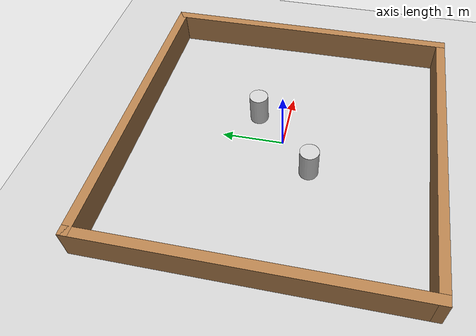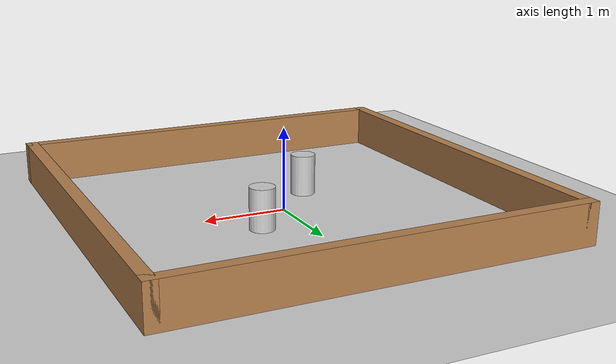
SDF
<?xml version="1.0"?>
<sdf version="1.6">
  <world name="default">
    <plugin filename="gz-sim-physics-system" name="gz::sim::systems::Physics"></plugin>
    <plugin filename="gz-sim-user-commands-system" name="gz::sim::systems::UserCommands"></plugin>
    <plugin filename="gz-sim-scene-broadcaster-system" name="gz::sim::systems::SceneBroadcaster"></plugin>
    <plugin filename="gz-sim-sensors-system" name="gz::sim::systems::Sensors">
      <render_engine>ogre2</render_engine>
    </plugin>
    <plugin filename="gz-sim-imu-system" name="gz::sim::systems::Imu"></plugin>
    <plugin filename="gz-sim-contact-system" name="gz::sim::systems::Contact"></plugin>

    <include>
      <uri>https://fuel.gazebosim.org/1.0/OpenRobotics/models/Ground Plane</uri>
    </include>
    <include>
      <uri>https://fuel.gazebosim.org/1.0/OpenRobotics/models/Sun</uri>
    </include>

    <scene>
      <shadows>false</shadows>
      <ambient>0.6 0.6 0.6 1</ambient>
      <background>0.8 0.8 0.8 1</background>
    </scene>

    <physics type="ode">
      <real_time_update_rate>1000.0</real_time_update_rate>
      <max_step_size>0.001</max_step_size>
      <real_time_factor>1</real_time_factor>
    </physics>

    <!-- Stage 3 -->
    <include>
      <uri>model://turtlebot3_drl_world/outer_walls</uri>
      <static>true</static>
    </include>

    <model name="drl_obstacle1">
      <pose>0.5 0.5 0 0 0 0</pose>
      <include>
        <uri>model://turtlebot3_drl_world/obstacle</uri>
      </include>
    </model>

    <model name="drl_obstacle2">
      <pose>-0.5 -0.5 0 0 0 0</pose>
      <include>
        <uri>model://turtlebot3_drl_world/obstacle</uri>
      </include>
    </model>

  </world>
</sdf>

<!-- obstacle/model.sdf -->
<sdf version='1.6'>
  <model name='obstacle'>
    <pose frame=''>0 0 0 0 0 0</pose>
    <link name='cylinder'>
      <collision name='collision'>
        <pose>0 0 0.25 0 0 0</pose>
        <geometry>
          <cylinder>
            <radius>0.15</radius>
            <length>0.5</length>
          </cylinder>
        </geometry>
      </collision>
      <visual name='visual'>
        <pose>0 0 0.25 0 0 0</pose>
        <geometry>
          <cylinder>
            <radius>0.15</radius>
            <length>0.5</length>
          </cylinder>
        </geometry>
        <material>
          <ambient>0.8 0.8 0.8 1</ambient>
          <diffuse>0.8 0.8 0.8 1</diffuse>
        </material>
      </visual>
    </link>
    <static>false</static>
  </model>
</sdf>

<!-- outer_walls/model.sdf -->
<sdf version='1.6'>
  <model name='outer_walls'>
    <pose frame=''>0 0 0 0 0 0</pose>
    <link name='Wall_1'>
      <collision name='Wall_1_Collision'>
        <geometry>
          <box>
            <size>5 0.15 0.5</size>
          </box>
        </geometry>
        <pose frame=''>0 0 0.25 0 -0 0</pose>
      </collision>
      <visual name='Wall_1_Visual'>
        <pose frame=''>0 0 0.25 0 -0 0</pose>
        <geometry>
          <box>
            <size>5 0.15 0.5</size>
          </box>
        </geometry>
        <material>
          <script>
            <uri>file://media/materials/scripts/gazebo.material</uri>
            <name>Gazebo/Wood</name>
          </script>
          <ambient>1 1 1 1</ambient>
        </material>
      </visual>
      <pose frame=''>-2.425 0 0 0 -0 1.5708</pose>
    </link>
    <link name='Wall_2'>
      <collision name='Wall_2_Collision'>
        <geometry>
          <box>
            <size>5 0.15 0.5</size>
          </box>
        </geometry>
        <pose frame=''>0 0 0.25 0 -0 0</pose>
      </collision>
      <visual name='Wall_2_Visual'>
        <pose frame=''>0 0 0.25 0 -0 0</pose>
        <geometry>
          <box>
            <size>5 0.15 0.5</size>
          </box>
        </geometry>
        <material>
          <script>
            <uri>file://media/materials/scripts/gazebo.material</uri>
            <name>Gazebo/Wood</name>
          </script>
          <ambient>1 1 1 1</ambient>
        </material>
      </visual>
      <pose frame=''>0 2.425 0 0 -0 0</pose>
    </link>
    <link name='Wall_3'>
      <collision name='Wall_3_Collision'>
        <geometry>
          <box>
            <size>5 0.15 0.5</size>
          </box>
        </geometry>
        <pose frame=''>0 0 0.25 0 -0 0</pose>
      </collision>
      <visual name='Wall_3_Visual'>
        <pose frame=''>0 0 0.25 0 -0 0</pose>
        <geometry>
          <box>
            <size>5 0.15 0.5</size>
          </box>
        </geometry>
        <material>
          <script>
            <uri>file://media/materials/scripts/gazebo.material</uri>
            <name>Gazebo/Wood</name>
          </script>
          <ambient>1 1 1 1</ambient>
        </material>
      </visual>
      <pose frame=''>2.425 0 0 0 0 -1.5708</pose>
    </link>
    <link name='Wall_4'>
      <collision name='Wall_4_Collision'>
        <geometry>
          <box>
            <size>5 0.15 0.5</size>
          </box>
        </geometry>
        <pose frame=''>0 0 0.25 0 -0 0</pose>
      </collision>
      <visual name='Wall_4_Visual'>
        <pose frame=''>0 0 0.25 0 -0 0</pose>
        <geometry>
          <box>
            <size>5 0.15 0.5</size>
          </box>
        </geometry>
        <material>
          <script>
            <uri>file://media/materials/scripts/gazebo.material</uri>
            <name>Gazebo/Wood</name>
          </script>
          <ambient>1 1 1 1</ambient>
        </material>
      </visual>
      <pose frame=''>0 -2.425 0 0 -0 3.14159</pose>
    </link>
    <static>1</static>
  </model>
</sdf>
